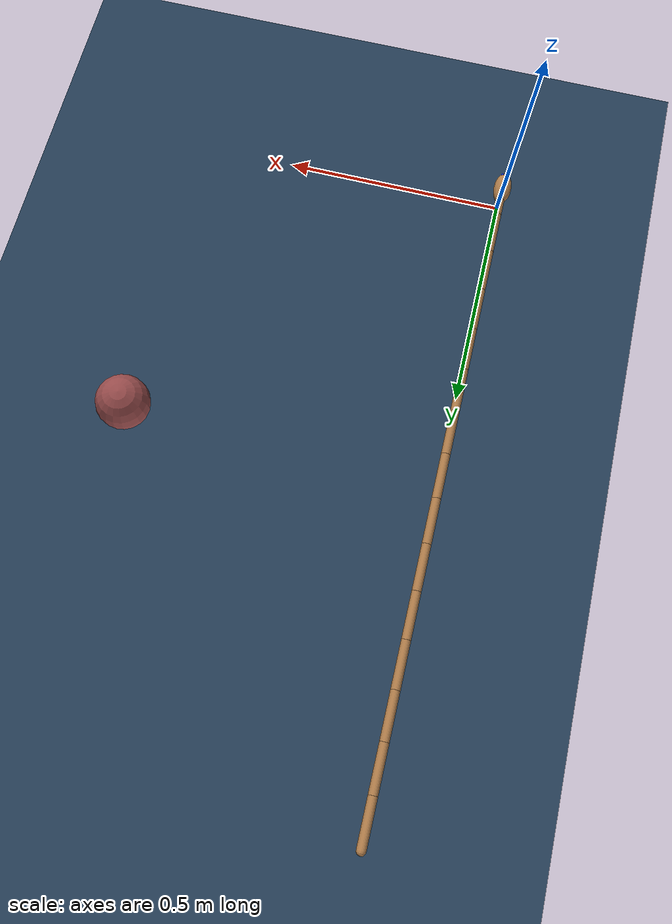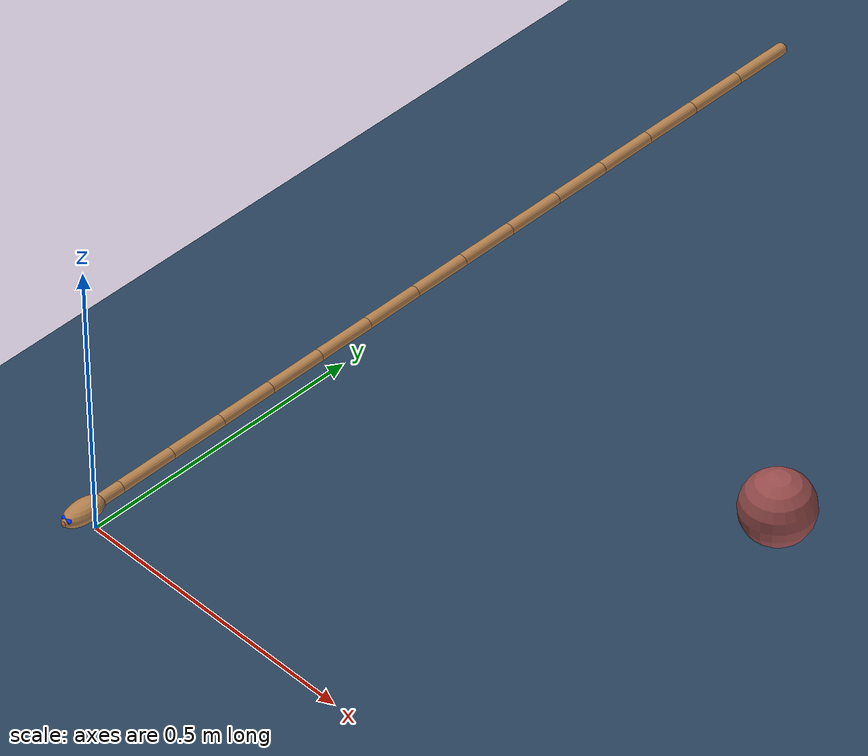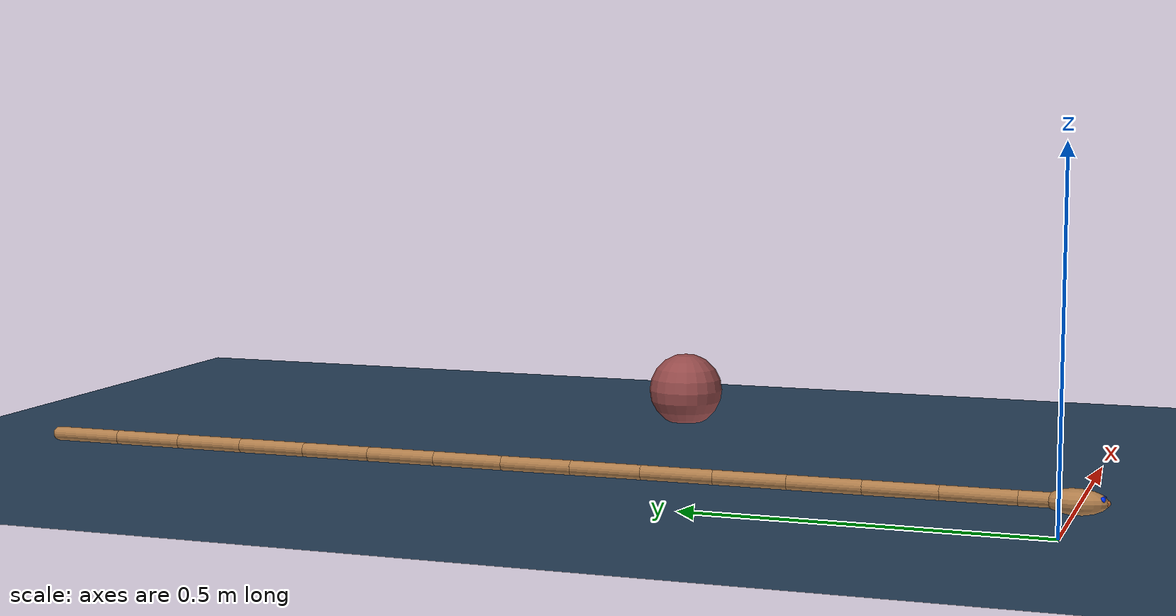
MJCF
<mujoco model="swimmer">
  <include file="./common/visual.xml"/>
  <include file="./common/skybox.xml"/>
  <include file="./common/materials.xml"/>

  <option timestep="0.005" density="3000">
    <flag contact="disable"/>
  </option>

  <default>
    <default class="swimmer">
      <joint type="hinge" pos="0 -.05 0" axis="0 0 1" limited="true" solreflimit=".05 1" solimplimit="0 .8 .1" armature="1e-6"/>
      <default class="inertial">
        <geom type="box" size=".001 .05 .01" rgba="0 0 0 0" mass=".01"/>
      </default>
      <default class="visual">
        <geom type="capsule" size=".01" fromto="0 -.05 0 0 .05 0" material="self" mass="0"/>
      </default>
      <site size=".01" rgba="0 0 0 0"/>
    </default>
    <default class="free">
      <joint limited="false" stiffness="0" armature="0"/>
    </default>
    <motor gear="5e-4" ctrllimited="false" ctrlrange="-100 100"/>
  </default>

  <worldbody>
    <geom name="ground" type="plane" size="2 2 0.1" material="grid"/>
    <body name="head" pos="0 0 .05" childclass="swimmer">
      <light name="light_1" diffuse=".8 .8 .8" pos="0 0 1.5"/>
      <geom name="head" type="ellipsoid" size=".02 .04 .017" pos="0 -.022 0"  material="self" mass="0"/>
      <geom name="nose" type="sphere" pos="0 -.06 0" size=".004" material="effector" mass="0"/>
      <geom name="eyes" type="capsule" fromto="-.006 -.054 .005 .006 -.054 .005" size=".004" material="eye" mass="0"/>
      <camera name="tracking1" pos="0 -.2 .5" xyaxes="1 0 0 0 1 1" mode="trackcom" fovy="60"/>
      <camera name="tracking2" pos="-.9 .5 .15" xyaxes="0 -1 0 .3 0 1" mode="trackcom" fovy="60"/>
      <camera name="eyes" pos="0 -.058 .005" xyaxes="-1 0 0 0 0 1"/>
      <joint name="rootx" class="free" type="slide" axis="1 0 0" pos="0 -.05 0"/>
      <joint name="rooty" class="free" type="slide" axis="0 1 0" pos="0 -.05 0"/>
      <joint name="rootz" class="free" type="hinge" axis="0 0 1" pos="0 -.05 0"/>
      <geom name="inertial" class="inertial"/>
      <geom name="visual" class="visual"/>
      <site name="head"/>
      <body name="segment_1" pos="0 .1 0">
          <geom name="inertial_1" class="inertial"/>
          <geom name="visual_1" class="visual"/>
          <site name="site_1"/>
          <joint name="joint_1" range="-60 60"/>
          <body name="segment_2" pos="0 .1 0">
              <geom name="inertial_2" class="inertial"/>
              <geom name="visual_2" class="visual"/>
              <site name="site_2"/>
              <joint name="joint_2" range="-60 60"/>
              <body name="segment_3" pos="0 .1 0">
                  <geom name="inertial_3" class="inertial"/>
                  <geom name="visual_3" class="visual"/>
                  <site name="site_3"/>
                  <joint name="joint_3" range="-60 60"/>
                  <body name="segment_4" pos="0 .1 0">
                      <geom name="inertial_4" class="inertial"/>
                      <geom name="visual_4" class="visual"/>
                      <site name="site_4"/>
                      <joint name="joint_4" range="-60 60"/>
                      <body name="segment_5" pos="0 .1 0">
                          <geom name="inertial_5" class="inertial"/>
                          <geom name="visual_5" class="visual"/>
                          <site name="site_5"/>
                          <joint name="joint_5" range="-60 60"/>
						  <body name="segment_6" pos="0 .1 0">
							  <geom name="inertial_6" class="inertial"/>
							  <geom name="visual_6" class="visual"/>
							  <site name="site_6"/>
							  <joint name="joint_6" range="-60 60"/>
							  <body name="segment_7" pos="0 .1 0">
								  <geom name="inertial_7" class="inertial"/>
								  <geom name="visual_7" class="visual"/>
								  <site name="site_7"/>
								  <joint name="joint_7" range="-60 60"/>
								  <body name="segment_8" pos="0 .1 0">
									  <geom name="inertial_8" class="inertial"/>
									  <geom name="visual_8" class="visual"/>
									  <site name="site_8"/>
									  <joint name="joint_8" range="-60 60"/>
									  <body name="segment_9" pos="0 .1 0">
										  <geom name="inertial_9" class="inertial"/>
										  <geom name="visual_9" class="visual"/>
										  <site name="site_9"/>
										  <joint name="joint_9" range="-60 60"/>
										  <body name="segment_10" pos="0 .1 0">
											  <geom name="inertial_10" class="inertial"/>
											  <geom name="visual_10" class="visual"/>
											  <site name="site_10"/>
											  <joint name="joint_10" range="-60 60"/>
											  <body name="segment_11" pos="0 .1 0">
												  <geom name="inertial_11" class="inertial"/>
												  <geom name="visual_11" class="visual"/>
												  <site name="site_11"/>
												  <joint name="joint_11" range="-60 60"/>
												  <body name="segment_12" pos="0 .1 0">
													  <geom name="inertial_12" class="inertial"/>
													  <geom name="visual_12" class="visual"/>
													  <site name="site_12"/>
													  <joint name="joint_12" range="-60 60"/>
													  <body name="segment_13" pos="0 .1 0">
														  <geom name="inertial_13" class="inertial"/>
														  <geom name="visual_13" class="visual"/>
														  <site name="site_13"/>
														  <joint name="joint_13" range="-60 60"/>
														  <body name="segment_14" pos="0 .1 0">
															  <geom name="inertial_14" class="inertial"/>
															  <geom name="visual_14" class="visual"/>
															  <site name="site_14"/>
															  <joint name="joint_14" range="-60 60"/>
														  </body>
													  </body>
												  </body>
											  </body>
										  </body>
									  </body>
								  </body>
							  </body>
						  </body>
                      </body>
                  </body>
              </body>
          </body>
      </body>
    </body>
    <geom name="target" type="sphere" pos="0.7 0.7 .05" size=".06" material="target"/>
    <light name="target_light" diffuse="1 1 1" pos="1 1 1.5"/>
  </worldbody>

  <actuator>
    <motor name="moter_1" joint="joint_1"/>
    <motor name="moter_2" joint="joint_2"/>
    <motor name="moter_3" joint="joint_3"/>
    <motor name="moter_4" joint="joint_4"/>
    <motor name="moter_5" joint="joint_5"/>
	<motor name="moter_6" joint="joint_6"/>
    <motor name="moter_7" joint="joint_7"/>
    <motor name="moter_8" joint="joint_8"/>
    <motor name="moter_9" joint="joint_9"/>
    <motor name="moter_10" joint="joint_10"/>
	<motor name="moter_11" joint="joint_11"/>
    <motor name="moter_12" joint="joint_12"/>
    <motor name="moter_13" joint="joint_13"/>
    <motor name="moter_14" joint="joint_14"/>
  </actuator>

</mujoco>

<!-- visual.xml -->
<mujoco>
    <visual>
        <headlight ambient=".4 .4 .4" diffuse=".8 .8 .8" specular="0.1 0.1 0.1" />
        <map znear=".01" />
        <quality shadowsize="2048" />
    </visual>
</mujoco>

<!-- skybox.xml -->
<mujoco>
    <asset>
        <texture name="skybox" type="skybox" builtin="gradient" rgb1=".4 .6 .8" rgb2="0 0 0" width="800" height="800" mark="random" markrgb="1 1 1" />
    </asset>
</mujoco>

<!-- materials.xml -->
<!--
Common textures, colors and materials to be used throughout this suite. Some
materials such as xxx_highlight are activated on occurence of certain events,
for example receiving a positive reward.
-->
<mujoco>
    <asset>
        <texture name="grid" type="2d" builtin="checker" rgb1=".1 .2 .3" rgb2=".2 .3 .4" width="300" height="300" mark="edge" markrgb=".2 .3 .4" />
        <material name="grid" texture="grid" texrepeat="1 1" texuniform="true" reflectance=".2" />
        <material name="self" rgba=".7 .5 .3 1" />
        <material name="self_default" rgba=".7 .5 .3 1" />
        <material name="self_highlight" rgba="0 .5 .3 1" />
        <material name="effector" rgba=".7 .4 .2 1" />
        <material name="effector_default" rgba=".7 .4 .2 1" />
        <material name="effector_highlight" rgba="0 .5 .3 1" />
        <material name="decoration" rgba=".3 .5 .7 1" />
        <material name="eye" rgba="0 .2 1 1" />
        <material name="target" rgba=".6 .3 .3 1" />
        <material name="target_default" rgba=".6 .3 .3 1" />
        <material name="target_highlight" rgba=".6 .3 .3 .4" />
    </asset>
</mujoco>
